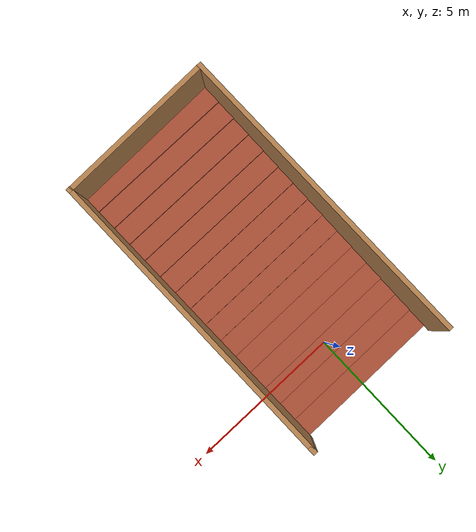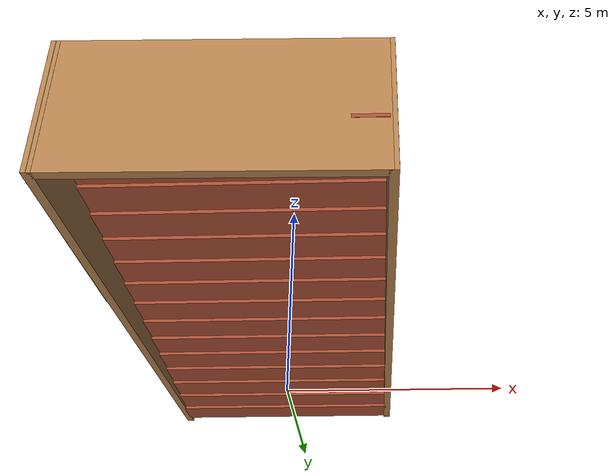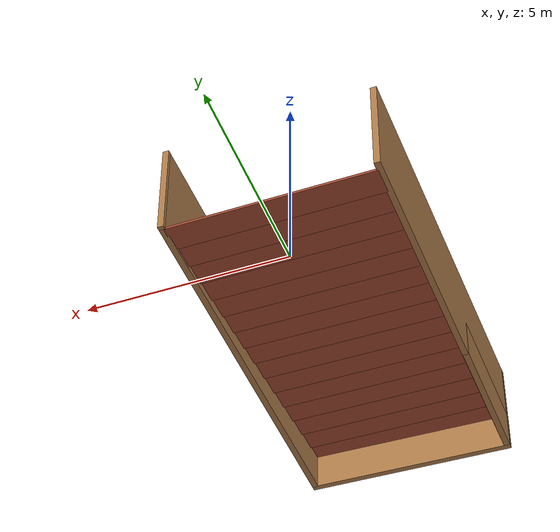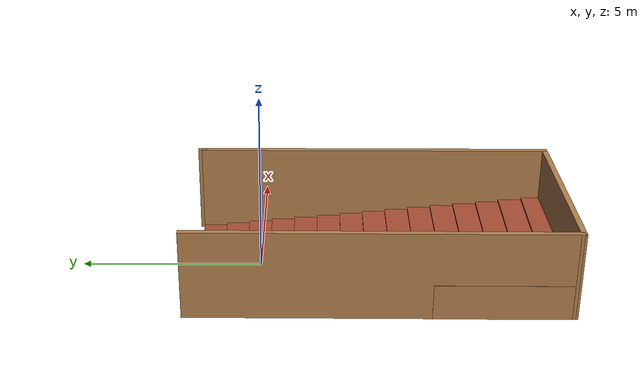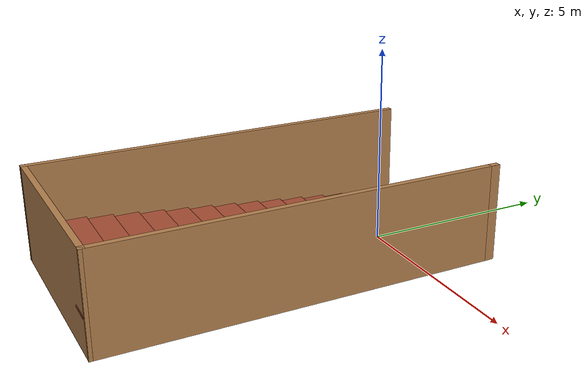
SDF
<?xml version='1.0'?>
<sdf version='1.7'>
  <model name='stair_case'>
    <pose>-0.198 -3.16667 0 0 -0 0</pose>
    <link name='Stairs_0'>
      <visual name='Stairs_0_Visual_0'>
        <pose>0.021515 4.60186 0.033333 0 -0 0</pose>
        <geometry>
          <box>
            <size>5 0.666667 0.066667</size>
          </box>
        </geometry>
        <material>
          <script>
            <uri>file://media/materials/scripts/gazebo.material</uri>
            <name>Gazebo/Bricks</name>
          </script>
          <ambient>1 1 1 1</ambient>
        </material>
        <meta>
          <layer>0</layer>
        </meta>
      </visual>
      <collision name='Stairs_0_Collision_0'>
        <geometry>
          <box>
            <size>5 0.666667 0.066667</size>
          </box>
        </geometry>
        <pose>0.021515 4.60186 0.033333 0 -0 0</pose>
      </collision>
      <visual name='Stairs_0_Visual_1'>
        <pose>0.021515 3.9352 0.1 0 -0 0</pose>
        <geometry>
          <box>
            <size>5 0.666667 0.066667</size>
          </box>
        </geometry>
        <material>
          <script>
            <uri>file://media/materials/scripts/gazebo.material</uri>
            <name>Gazebo/Bricks</name>
          </script>
          <ambient>1 1 1 1</ambient>
        </material>
        <meta>
          <layer>0</layer>
        </meta>
      </visual>
      <collision name='Stairs_0_Collision_1'>
        <geometry>
          <box>
            <size>5 0.666667 0.066667</size>
          </box>
        </geometry>
        <pose>0.021515 3.9352 0.1 0 -0 0</pose>
      </collision>
      <visual name='Stairs_0_Visual_2'>
        <pose>0.021515 3.26853 0.166667 0 -0 0</pose>
        <geometry>
          <box>
            <size>5 0.666667 0.066667</size>
          </box>
        </geometry>
        <material>
          <script>
            <uri>file://media/materials/scripts/gazebo.material</uri>
            <name>Gazebo/Bricks</name>
          </script>
          <ambient>1 1 1 1</ambient>
        </material>
        <meta>
          <layer>0</layer>
        </meta>
      </visual>
      <collision name='Stairs_0_Collision_2'>
        <geometry>
          <box>
            <size>5 0.666667 0.066667</size>
          </box>
        </geometry>
        <pose>0.021515 3.26853 0.166667 0 -0 0</pose>
      </collision>
      <visual name='Stairs_0_Visual_3'>
        <pose>0.021515 2.60186 0.233333 0 -0 0</pose>
        <geometry>
          <box>
            <size>5 0.666667 0.066667</size>
          </box>
        </geometry>
        <material>
          <script>
            <uri>file://media/materials/scripts/gazebo.material</uri>
            <name>Gazebo/Bricks</name>
          </script>
          <ambient>1 1 1 1</ambient>
        </material>
        <meta>
          <layer>0</layer>
        </meta>
      </visual>
      <collision name='Stairs_0_Collision_3'>
        <geometry>
          <box>
            <size>5 0.666667 0.066667</size>
          </box>
        </geometry>
        <pose>0.021515 2.60186 0.233333 0 -0 0</pose>
      </collision>
      <visual name='Stairs_0_Visual_4'>
        <pose>0.021515 1.93519 0.3 0 -0 0</pose>
        <geometry>
          <box>
            <size>5 0.666667 0.066667</size>
          </box>
        </geometry>
        <material>
          <script>
            <uri>file://media/materials/scripts/gazebo.material</uri>
            <name>Gazebo/Bricks</name>
          </script>
          <ambient>1 1 1 1</ambient>
        </material>
        <meta>
          <layer>0</layer>
        </meta>
      </visual>
      <collision name='Stairs_0_Collision_4'>
        <geometry>
          <box>
            <size>5 0.666667 0.066667</size>
          </box>
        </geometry>
        <pose>0.021515 1.93519 0.3 0 -0 0</pose>
      </collision>
      <visual name='Stairs_0_Visual_5'>
        <pose>0.021515 1.26853 0.366667 0 -0 0</pose>
        <geometry>
          <box>
            <size>5 0.666667 0.066667</size>
          </box>
        </geometry>
        <material>
          <script>
            <uri>file://media/materials/scripts/gazebo.material</uri>
            <name>Gazebo/Bricks</name>
          </script>
          <ambient>1 1 1 1</ambient>
        </material>
        <meta>
          <layer>0</layer>
        </meta>
      </visual>
      <collision name='Stairs_0_Collision_5'>
        <geometry>
          <box>
            <size>5 0.666667 0.066667</size>
          </box>
        </geometry>
        <pose>0.021515 1.26853 0.366667 0 -0 0</pose>
      </collision>
      <visual name='Stairs_0_Visual_6'>
        <pose>0.021515 0.601862 0.433333 0 -0 0</pose>
        <geometry>
          <box>
            <size>5 0.666667 0.066667</size>
          </box>
        </geometry>
        <material>
          <script>
            <uri>file://media/materials/scripts/gazebo.material</uri>
            <name>Gazebo/Bricks</name>
          </script>
          <ambient>1 1 1 1</ambient>
        </material>
        <meta>
          <layer>0</layer>
        </meta>
      </visual>
      <collision name='Stairs_0_Collision_6'>
        <geometry>
          <box>
            <size>5 0.666667 0.066667</size>
          </box>
        </geometry>
        <pose>0.021515 0.601862 0.433333 0 -0 0</pose>
      </collision>
      <visual name='Stairs_0_Visual_7'>
        <pose>0.021515 -0.064805 0.5 0 -0 0</pose>
        <geometry>
          <box>
            <size>5 0.666667 0.066667</size>
          </box>
        </geometry>
        <material>
          <script>
            <uri>file://media/materials/scripts/gazebo.material</uri>
            <name>Gazebo/Bricks</name>
          </script>
          <ambient>1 1 1 1</ambient>
        </material>
        <meta>
          <layer>0</layer>
        </meta>
      </visual>
      <collision name='Stairs_0_Collision_7'>
        <geometry>
          <box>
            <size>5 0.666667 0.066667</size>
          </box>
        </geometry>
        <pose>0.021515 -0.064805 0.5 0 -0 0</pose>
      </collision>
      <visual name='Stairs_0_Visual_8'>
        <pose>0.021515 -0.731472 0.566667 0 -0 0</pose>
        <geometry>
          <box>
            <size>5 0.666667 0.066667</size>
          </box>
        </geometry>
        <material>
          <script>
            <uri>file://media/materials/scripts/gazebo.material</uri>
            <name>Gazebo/Bricks</name>
          </script>
          <ambient>1 1 1 1</ambient>
        </material>
        <meta>
          <layer>0</layer>
        </meta>
      </visual>
      <collision name='Stairs_0_Collision_8'>
        <geometry>
          <box>
            <size>5 0.666667 0.066667</size>
          </box>
        </geometry>
        <pose>0.021515 -0.731472 0.566667 0 -0 0</pose>
      </collision>
      <visual name='Stairs_0_Visual_9'>
        <pose>0.021515 -1.39814 0.633333 0 -0 0</pose>
        <geometry>
          <box>
            <size>5 0.666667 0.066667</size>
          </box>
        </geometry>
        <material>
          <script>
            <uri>file://media/materials/scripts/gazebo.material</uri>
            <name>Gazebo/Bricks</name>
          </script>
          <ambient>1 1 1 1</ambient>
        </material>
        <meta>
          <layer>0</layer>
        </meta>
      </visual>
      <collision name='Stairs_0_Collision_9'>
        <geometry>
          <box>
            <size>5 0.666667 0.066667</size>
          </box>
        </geometry>
        <pose>0.021515 -1.39814 0.633333 0 -0 0</pose>
      </collision>
      <visual name='Stairs_0_Visual_10'>
        <pose>0.021515 -2.0648 0.7 0 -0 0</pose>
        <geometry>
          <box>
            <size>5 0.666667 0.066667</size>
          </box>
        </geometry>
        <material>
          <script>
            <uri>file://media/materials/scripts/gazebo.material</uri>
            <name>Gazebo/Bricks</name>
          </script>
          <ambient>1 1 1 1</ambient>
        </material>
        <meta>
          <layer>0</layer>
        </meta>
      </visual>
      <collision name='Stairs_0_Collision_10'>
        <geometry>
          <box>
            <size>5 0.666667 0.066667</size>
          </box>
        </geometry>
        <pose>0.021515 -2.0648 0.7 0 -0 0</pose>
      </collision>
      <visual name='Stairs_0_Visual_11'>
        <pose>0.021515 -2.73147 0.766667 0 -0 0</pose>
        <geometry>
          <box>
            <size>5 0.666667 0.066667</size>
          </box>
        </geometry>
        <material>
          <script>
            <uri>file://media/materials/scripts/gazebo.material</uri>
            <name>Gazebo/Bricks</name>
          </script>
          <ambient>1 1 1 1</ambient>
        </material>
        <meta>
          <layer>0</layer>
        </meta>
      </visual>
      <collision name='Stairs_0_Collision_11'>
        <geometry>
          <box>
            <size>5 0.666667 0.066667</size>
          </box>
        </geometry>
        <pose>0.021515 -2.73147 0.766667 0 -0 0</pose>
      </collision>
      <visual name='Stairs_0_Visual_12'>
        <pose>0.021515 -3.39814 0.833333 0 -0 0</pose>
        <geometry>
          <box>
            <size>5 0.666667 0.066667</size>
          </box>
        </geometry>
        <material>
          <script>
            <uri>file://media/materials/scripts/gazebo.material</uri>
            <name>Gazebo/Bricks</name>
          </script>
          <ambient>1 1 1 1</ambient>
        </material>
        <meta>
          <layer>0</layer>
        </meta>
      </visual>
      <collision name='Stairs_0_Collision_12'>
        <geometry>
          <box>
            <size>5 0.666667 0.066667</size>
          </box>
        </geometry>
        <pose>0.021515 -3.39814 0.833333 0 -0 0</pose>
      </collision>
      <visual name='Stairs_0_Visual_13'>
        <pose>0.021515 -4.0648 0.9 0 -0 0</pose>
        <geometry>
          <box>
            <size>5 0.666667 0.066667</size>
          </box>
        </geometry>
        <material>
          <script>
            <uri>file://media/materials/scripts/gazebo.material</uri>
            <name>Gazebo/Bricks</name>
          </script>
          <ambient>1 1 1 1</ambient>
        </material>
        <meta>
          <layer>0</layer>
        </meta>
      </visual>
      <collision name='Stairs_0_Collision_13'>
        <geometry>
          <box>
            <size>5 0.666667 0.066667</size>
          </box>
        </geometry>
        <pose>0.021515 -4.0648 0.9 0 -0 0</pose>
      </collision>
      <visual name='Stairs_0_Visual_14'>
        <pose>0.021515 -4.73147 0.966667 0 -0 0</pose>
        <geometry>
          <box>
            <size>5 0.666667 0.066667</size>
          </box>
        </geometry>
        <material>
          <script>
            <uri>file://media/materials/scripts/gazebo.material</uri>
            <name>Gazebo/Bricks</name>
          </script>
          <ambient>1 1 1 1</ambient>
        </material>
        <meta>
          <layer>0</layer>
        </meta>
      </visual>
      <collision name='Stairs_0_Collision_14'>
        <geometry>
          <box>
            <size>5 0.666667 0.066667</size>
          </box>
        </geometry>
        <pose>0.021515 -4.73147 0.966667 0 -0 0</pose>
      </collision>
    </link>
    <link name='Wall_0'>
      <collision name='Wall_0_Collision'>
        <geometry>
          <box>
            <size>10.32 0.15 2.5</size>
          </box>
        </geometry>
        <pose>0 0 1.25 0 -0 0</pose>
      </collision>
      <visual name='Wall_0_Visual'>
        <pose>0 0 1.25 0 -0 0</pose>
        <geometry>
          <box>
            <size>10.32 0.15 2.5</size>
          </box>
        </geometry>
        <material>
          <script>
            <uri>file://media/materials/scripts/gazebo.material</uri>
            <name>Gazebo/Wood</name>
          </script>
          <ambient>1 1 1 1</ambient>
        </material>
        <meta>
          <layer>0</layer>
        </meta>
      </visual>
      <pose>-2.535 0.000671 0 0 -0 -1.57375</pose>
    </link>
    <link name='Wall_1'>
      <collision name='Wall_1_Collision'>
        <geometry>
          <box>
            <size>0.15 0.15 2.5</size>
          </box>
        </geometry>
        <pose>0 0 1.25 0 -0 0</pose>
      </collision>
      <visual name='Wall_1_Visual'>
        <pose>0 0 1.25 0 -0 0</pose>
        <geometry>
          <box>
            <size>0.15 0.15 2.5</size>
          </box>
        </geometry>
        <material>
          <script>
            <uri>file://media/materials/scripts/gazebo.material</uri>
            <name>Gazebo/Grey</name>
          </script>
          <ambient>1 1 1 1</ambient>
        </material>
        <meta>
          <layer>0</layer>
        </meta>
      </visual>
      <pose>-2.55 -5.08433 0 0 -0 0</pose>
    </link>
    <link name='Wall_2'>
      <collision name='Wall_2_Collision'>
        <geometry>
          <box>
            <size>3.7768 0.15 1</size>
          </box>
        </geometry>
        <pose>0 0 0.5 0 -0 0</pose>
      </collision>
      <visual name='Wall_2_Visual'>
        <pose>0 0 0.5 0 -0 0</pose>
        <geometry>
          <box>
            <size>3.7768 0.15 1</size>
          </box>
        </geometry>
        <material>
          <script>
            <uri>file://media/materials/scripts/gazebo.material</uri>
            <name>Gazebo/Wood</name>
          </script>
          <ambient>1 1 1 1</ambient>
        </material>
        <meta>
          <layer>0</layer>
        </meta>
      </visual>
      <pose>-2.55 -3.27083 0 0 -0 1.5708</pose>
    </link>
    <link name='Wall_4'>
      <collision name='Wall_4_Collision'>
        <geometry>
          <box>
            <size>5.25174 0.15 2.5</size>
          </box>
        </geometry>
        <pose>0 0 1.25 0 -0 0</pose>
      </collision>
      <visual name='Wall_4_Visual'>
        <pose>0 0 1.25 0 -0 0</pose>
        <geometry>
          <box>
            <size>5.25174 0.15 2.5</size>
          </box>
        </geometry>
        <material>
          <script>
            <uri>file://media/materials/scripts/gazebo.material</uri>
            <name>Gazebo/Wood</name>
          </script>
          <ambient>1 1 1 1</ambient>
        </material>
        <meta>
          <layer>0</layer>
        </meta>
      </visual>
      <pose>-0 -5.03083 0 0 -0 0.020977</pose>
    </link>
    <link name='Wall_5'>
      <collision name='Wall_5_Collision'>
        <geometry>
          <box>
            <size>10 0.15 2.5</size>
          </box>
        </geometry>
        <pose>0 0 1.25 0 -0 0</pose>
      </collision>
      <visual name='Wall_5_Visual'>
        <pose>0 0 1.25 0 -0 0</pose>
        <geometry>
          <box>
            <size>10 0.15 2.5</size>
          </box>
        </geometry>
        <material>
          <script>
            <uri>file://media/materials/scripts/gazebo.material</uri>
            <name>Gazebo/Wood</name>
          </script>
          <ambient>1 1 1 1</ambient>
        </material>
        <meta>
          <layer>0</layer>
        </meta>
      </visual>
      <pose>2.55 -0.052329 0 0 -0 1.5708</pose>
    </link>
    <link name='Wall_6'>
      <collision name='Wall_6_Collision'>
        <geometry>
          <box>
            <size>0.25 0.15 2.5</size>
          </box>
        </geometry>
        <pose>0 0 1.25 0 -0 0</pose>
      </collision>
      <visual name='Wall_6_Visual'>
        <pose>0 0 1.25 0 -0 0</pose>
        <geometry>
          <box>
            <size>0.25 0.15 2.5</size>
          </box>
        </geometry>
        <material>
          <script>
            <uri>file://media/materials/scripts/gazebo.material</uri>
            <name>Gazebo/Wood</name>
          </script>
          <ambient>1 1 1 1</ambient>
        </material>
        <meta>
          <layer>0</layer>
        </meta>
      </visual>
      <pose>2.55 4.92267 0 0 -0 1.5708</pose>
    </link>
    <static>1</static>
  </model>
</sdf>
